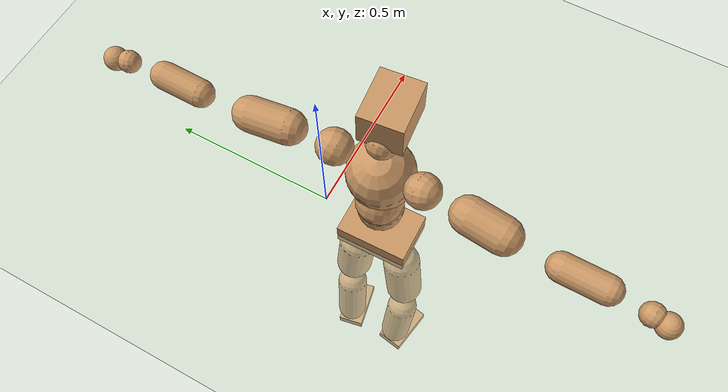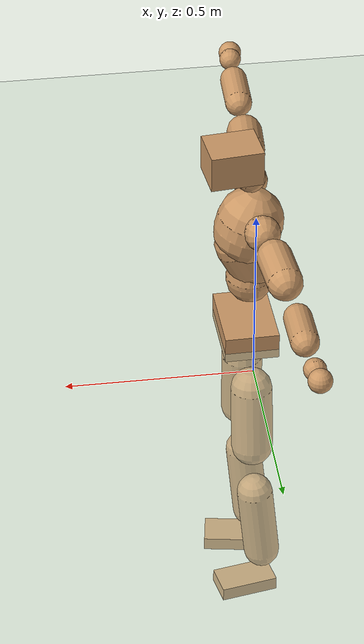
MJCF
<mujoco model="humanoid">
  <compiler coordinate="local" angle="radian"/>
  <default>
    <joint damping="0.0" armature="0.01" stiffness="0.0" limited="true"/>
    <geom conaffinity="1" condim="3" contype="7" margin="0.001" rgba="0.8 0.6 .4 1"/>
  </default>
  <asset>
    <texture type="skybox" builtin="gradient" rgb1=".4 .5 .6" rgb2="0 0 0" width="100" height="100"/>
    <texture builtin="flat" height="1278" mark="cross" markrgb="1 1 1" name="texgeom" random="0.01" rgb1="0.8 0.6 0.4" rgb2="0.8 0.6 0.4" type="cube" width="127"/>
    <texture builtin="checker" height="100" name="texplane" rgb1="0 0 0" rgb2="0.8 0.8 0.8" type="2d" width="100"/>
    <material name="MatPlane" reflectance="0.5" shininess="1" specular="1" texrepeat="60 60" texture="texplane"/>
    <material name="geom" texture="texgeom" texuniform="true"/>
  </asset>
  <worldbody>
    <light cutoff="100" diffuse="1 1 1" dir="-0 0 -1.3" directional="true" exponent="1" pos="0 0 1.3" specular=".1 .1 .1"/>
    <geom conaffinity="1" condim="3" name="floor" pos="0 0 0" rgba="0.8 0.9 0.8 1" size="100 100 .2" type="plane" material="MatPlane"/>
    <body name="Pelvis" pos="-0.0024 -0.188 0.0202">
      <freejoint name="Pelvis"/>
      <geom type="box" contype="1" conaffinity="1" density="5359.375498" pos="-0.0059 -0.0001 -0.0119" size="0.0731 0.104 0.0365" quat="0.9999 0.0000 0.0000 0.0112" name="Pelvis"/>
      <body name="L_Hip" pos="-0.0118 0.0664 -0.0836">
        <joint name="L_Hip_x" type="hinge" pos="0 0 0" axis="1 0 0" stiffness="1600" damping="160" armature="0.02" range="-180.0000 180.0000"/>
        <joint name="L_Hip_y" type="hinge" pos="0 0 0" axis="0 1 0" stiffness="1600" damping="160" armature="0.02" range="-180.0000 180.0000"/>
        <joint name="L_Hip_z" type="hinge" pos="0 0 0" axis="0 0 1" stiffness="1600" damping="160" armature="0.02" range="-180.0000 180.0000"/>
        <geom type="capsule" contype="1" conaffinity="1" density="2040.816327" size="0.0569" fromto="-0.0009 0.0076 -0.0866 -0.0029 0.0240 -0.2743" name="L_Hip"/>
        <body name="L_Knee" pos="-0.0038 0.0316 -0.3608">
          <joint name="L_Knee_x" type="hinge" pos="0 0 0" axis="1 0 0" stiffness="1600" damping="160" armature="0.02" range="-180.0000 180.0000"/>
          <joint name="L_Knee_y" type="hinge" pos="0 0 0" axis="0 1 0" stiffness="1600" damping="160" armature="0.02" range="-180.0000 180.0000"/>
          <joint name="L_Knee_z" type="hinge" pos="0 0 0" axis="0 0 1" stiffness="1600" damping="160" armature="0.02" range="-180.0000 180.0000"/>
          <geom type="capsule" contype="1" conaffinity="1" density="1234.567901" size="0.0493" fromto="-0.0085 -0.0024 -0.0788 -0.0324 -0.0094 -0.3020" name="L_Knee"/>
          <body name="L_Ankle" pos="-0.0409 -0.0118 -0.3808">
            <joint name="L_Ankle_x" type="hinge" pos="0 0 0" axis="1 0 0" stiffness="1600" damping="160" armature="0.02" range="-180.0000 180.0000"/>
            <joint name="L_Ankle_y" type="hinge" pos="0 0 0" axis="0 1 0" stiffness="1600" damping="160" armature="0.02" range="-180.0000 180.0000"/>
            <joint name="L_Ankle_z" type="hinge" pos="0 0 0" axis="0 0 1" stiffness="1600" damping="160" armature="0.02" range="-180.0000 180.0000"/>
            <geom type="box" contype="1" conaffinity="1" density="1000.000028" pos="0.0556 0.0105 -0.0269" size="0.0793 0.0437 0.0194" quat="0.9956 0.0000 0.0000 0.0933" name="L_Ankle"/>
            <body name="L_Toe" pos="0.1112 0.021 -0.0537">
              <joint name="L_Toe_x" type="hinge" pos="0 0 0" axis="1 0 0" stiffness="1000" damping="100" armature="0.02" range="-180.0000 180.0000"/>
              <joint name="L_Toe_y" type="hinge" pos="0 0 0" axis="0 1 0" stiffness="1000" damping="100" armature="0.02" range="-180.0000 180.0000"/>
              <joint name="L_Toe_z" type="hinge" pos="0 0 0" axis="0 0 1" stiffness="1000" damping="100" armature="0.02" range="-180.0000 180.0000"/>
              <geom type="box" contype="1" conaffinity="1" density="8325287.69607" pos="0.0000 0.0000 0.0265" size="0.0009 0.0022 0.001" quat="0.9950 0.0000 0.0000 0.1001" name="L_Toe"/>
            </body>
          </body>
        </body>
      </body>
      <body name="R_Hip" pos="-0.0078 -0.0651 -0.0829">
        <joint name="R_Hip_x" type="hinge" pos="0 0 0" axis="1 0 0" stiffness="1600" damping="160" armature="0.02" range="-180.0000 180.0000"/>
        <joint name="R_Hip_y" type="hinge" pos="0 0 0" axis="0 1 0" stiffness="1600" damping="160" armature="0.02" range="-180.0000 180.0000"/>
        <joint name="R_Hip_z" type="hinge" pos="0 0 0" axis="0 0 1" stiffness="1600" damping="160" armature="0.02" range="-180.0000 180.0000"/>
        <geom type="capsule" contype="1" conaffinity="1" density="2040.816327" size="0.0562" fromto="-0.0015 -0.0088 -0.0858 -0.0049 -0.0287 -0.2807" name="R_Hip"/>
        <body name="R_Knee" pos="-0.0064 -0.0374 -0.3665">
          <joint name="R_Knee_x" type="hinge" pos="0 0 0" axis="1 0 0" stiffness="1600" damping="160" armature="0.02" range="-180.0000 180.0000"/>
          <joint name="R_Knee_y" type="hinge" pos="0 0 0" axis="0 1 0" stiffness="1600" damping="160" armature="0.02" range="-180.0000 180.0000"/>
          <joint name="R_Knee_z" type="hinge" pos="0 0 0" axis="0 0 1" stiffness="1600" damping="160" armature="0.02" range="-180.0000 180.0000"/>
          <geom type="capsule" contype="1" conaffinity="1" density="1234.567901" size="0.0496" fromto="-0.0079 0.0030 -0.0792 -0.0301 0.0115 -0.3010" name="R_Knee"/>
          <body name="R_Ankle" pos="-0.0381 0.0145 -0.3801">
            <joint name="R_Ankle_x" type="hinge" pos="0 0 0" axis="1 0 0" stiffness="1600" damping="160" armature="0.02" range="-180.0000 180.0000"/>
            <joint name="R_Ankle_y" type="hinge" pos="0 0 0" axis="0 1 0" stiffness="1600" damping="160" armature="0.02" range="-180.0000 180.0000"/>
            <joint name="R_Ankle_z" type="hinge" pos="0 0 0" axis="0 0 1" stiffness="1600" damping="160" armature="0.02" range="-180.0000 180.0000"/>
            <geom type="box" contype="1" conaffinity="1" density="999.99999" pos="0.0574 -0.0096 -0.0230" size="0.0807 0.0448 0.0192" quat="0.9966 0.0000 0.0000 -0.0826" name="R_Ankle"/>
            <body name="R_Toe" pos="0.1147 -0.0192 -0.046">
              <joint name="R_Toe_x" type="hinge" pos="0 0 0" axis="1 0 0" stiffness="1000" damping="100" armature="0.02" range="-180.0000 180.0000"/>
              <joint name="R_Toe_y" type="hinge" pos="0 0 0" axis="0 1 0" stiffness="1000" damping="100" armature="0.02" range="-180.0000 180.0000"/>
              <joint name="R_Toe_z" type="hinge" pos="0 0 0" axis="0 0 1" stiffness="1000" damping="100" armature="0.02" range="-180.0000 180.0000"/>
              <geom type="box" contype="1" conaffinity="1" density="8256833.359771" pos="0.0000 0.0000 0.0248" size="0.0009 0.0022 0.001" quat="0.9973 0.0000 0.0000 -0.0729" name="R_Toe"/>
            </body>
          </body>
        </body>
      </body>
      <body name="Torso" pos="-0.0155 -0.0021 0.0952">
        <joint name="Torso_x" type="hinge" pos="0 0 0" axis="1 0 0" stiffness="2000" damping="200" armature="0.02" range="-180.0000 180.0000"/>
        <joint name="Torso_y" type="hinge" pos="0 0 0" axis="0 1 0" stiffness="2000" damping="200" armature="0.02" range="-180.0000 180.0000"/>
        <joint name="Torso_z" type="hinge" pos="0 0 0" axis="0 0 1" stiffness="2000" damping="200" armature="0.02" range="-180.0000 180.0000"/>
        <geom type="capsule" contype="1" conaffinity="1" density="2040.816327" size="0.0642" fromto="0.0012 0.0019 0.0642 0.0010 0.0015 0.0510" name="Torso"/>
        <body name="Spine" pos="0.0022 0.0034 0.1152">
          <joint name="Spine_x" type="hinge" pos="0 0 0" axis="1 0 0" stiffness="2000" damping="200" armature="0.02" range="-180.0000 180.0000"/>
          <joint name="Spine_y" type="hinge" pos="0 0 0" axis="0 1 0" stiffness="2000" damping="200" armature="0.02" range="-180.0000 180.0000"/>
          <joint name="Spine_z" type="hinge" pos="0 0 0" axis="0 0 1" stiffness="2000" damping="200" armature="0.02" range="-180.0000 180.0000"/>
          <geom type="capsule" contype="1" conaffinity="1" density="2040.816327" size="0.066" fromto="0.0303 0.0037 0.0585 -0.0071 -0.0009 -0.0138" name="Spine"/>
          <body name="Chest" pos="0.0232 0.0028 0.0448">
            <joint name="Chest_x" type="hinge" pos="0 0 0" axis="1 0 0" stiffness="2000" damping="200" armature="0.02" range="-180.0000 180.0000"/>
            <joint name="Chest_y" type="hinge" pos="0 0 0" axis="0 1 0" stiffness="2000" damping="200" armature="0.02" range="-180.0000 180.0000"/>
            <joint name="Chest_z" type="hinge" pos="0 0 0" axis="0 0 1" stiffness="2000" damping="200" armature="0.02" range="-180.0000 180.0000"/>
            <geom type="capsule" contype="1" conaffinity="1" density="2040.816327" size="0.0893" fromto="-0.0232 -0.0011 0.0862 -0.0137 -0.0006 0.0510" name="Chest"/>
            <body name="Neck" pos="-0.0439 -0.0032 0.1929">
              <joint name="Neck_x" type="hinge" pos="0 0 0" axis="1 0 0" stiffness="1000" damping="100" armature="0.02" range="-180.0000 180.0000"/>
              <joint name="Neck_y" type="hinge" pos="0 0 0" axis="0 1 0" stiffness="1000" damping="100" armature="0.02" range="-180.0000 180.0000"/>
              <joint name="Neck_z" type="hinge" pos="0 0 0" axis="0 0 1" stiffness="1000" damping="100" armature="0.02" range="-180.0000 180.0000"/>
              <geom type="capsule" contype="1" conaffinity="1" density="1000" size="0.0397" fromto="0.0246 0.0016 0.0311 0.0221 0.0015 0.0278" name="Neck"/>
              <body name="Head" pos="0.0467 0.0031 0.0589">
                <joint name="Head_x" type="hinge" pos="0 0 0" axis="1 0 0" stiffness="1000" damping="100" armature="0.02" range="-180.0000 180.0000"/>
                <joint name="Head_y" type="hinge" pos="0 0 0" axis="0 1 0" stiffness="1000" damping="100" armature="0.02" range="-180.0000 180.0000"/>
                <joint name="Head_z" type="hinge" pos="0 0 0" axis="0 0 1" stiffness="1000" damping="100" armature="0.02" range="-180.0000 180.0000"/>
                <geom type="box" contype="1" conaffinity="1" density="2249.999851" pos="0.0244 0.0026 0.0304" size="0.0704 0.0567 0.0492" quat="0.9986 0.0000 0.0000 0.0524" name="Head"/>
              </body>
            </body>
            <body name="L_Thorax" pos="-0.0319 0.0758 0.1103">
              <joint name="L_Thorax_x" type="hinge" pos="0 0 0" axis="1 0 0" stiffness="1000" damping="100" armature="0.02" range="-180.0000 180.0000"/>
              <joint name="L_Thorax_y" type="hinge" pos="0 0 0" axis="0 1 0" stiffness="1000" damping="100" armature="0.02" range="-180.0000 180.0000"/>
              <joint name="L_Thorax_z" type="hinge" pos="0 0 0" axis="0 0 1" stiffness="1000" damping="100" armature="0.02" range="-180.0000 180.0000"/>
              <geom type="capsule" contype="1" conaffinity="1" density="1000" size="0.0478" fromto="-0.0038 0.0431 0.0160 -0.0040 0.0450 0.0167" name="L_Thorax"/>
              <body name="L_Shoulder" pos="-0.0079 0.0881 0.0326">
                <joint name="L_Shoulder_x" type="hinge" pos="0 0 0" axis="1 0 0" stiffness="1000" damping="100" armature="0.02" range="-720.0000 720.0000"/>
                <joint name="L_Shoulder_y" type="hinge" pos="0 0 0" axis="0 1 0" stiffness="1000" damping="100" armature="0.02" range="-720.0000 720.0000"/>
                <joint name="L_Shoulder_z" type="hinge" pos="0 0 0" axis="0 0 1" stiffness="1000" damping="100" armature="0.02" range="-720.0000 720.0000"/>
                <geom type="capsule" contype="1" conaffinity="1" density="1000" size="0.0465" fromto="-0.0077 0.0760 -0.0040 -0.0183 0.1813 -0.0096" name="L_Shoulder"/>
                <body name="L_Elbow" pos="-0.026 0.2573 -0.0137">
                  <joint name="L_Elbow_x" type="hinge" pos="0 0 0" axis="1 0 0" stiffness="1000" damping="100" armature="0.02" range="-720.0000 720.0000"/>
                  <joint name="L_Elbow_y" type="hinge" pos="0 0 0" axis="0 1 0" stiffness="1000" damping="100" armature="0.02" range="-720.0000 720.0000"/>
                  <joint name="L_Elbow_z" type="hinge" pos="0 0 0" axis="0 0 1" stiffness="1000" damping="100" armature="0.02" range="-720.0000 720.0000"/>
                  <geom type="capsule" contype="1" conaffinity="1" density="1000" size="0.0365" fromto="-0.0003 0.0665 0.0026 -0.0009 0.1734 0.0067" name="L_Elbow"/>
                  <body name="L_Wrist" pos="-0.0012 0.2399 0.0093">
                    <joint name="L_Wrist_x" type="hinge" pos="0 0 0" axis="1 0 0" stiffness="600" damping="60" armature="0.02" range="-180.0000 180.0000"/>
                    <joint name="L_Wrist_y" type="hinge" pos="0 0 0" axis="0 1 0" stiffness="600" damping="60" armature="0.02" range="-180.0000 180.0000"/>
                    <joint name="L_Wrist_z" type="hinge" pos="0 0 0" axis="0 0 1" stiffness="600" damping="60" armature="0.02" range="-180.0000 180.0000"/>
                    <geom type="capsule" contype="1" conaffinity="1" density="1000" size="0.0291" fromto="-0.0063 0.0379 -0.0047 -0.0066 0.0399 -0.0049" name="L_Wrist"/>
                    <body name="L_Hand" pos="-0.0129 0.0778 -0.0096">
                      <joint name="L_Hand_x" type="hinge" pos="0 0 0" axis="1 0 0" stiffness="600" damping="60" armature="0.02" range="-180.0000 180.0000"/>
                      <joint name="L_Hand_y" type="hinge" pos="0 0 0" axis="0 1 0" stiffness="600" damping="60" armature="0.02" range="-180.0000 180.0000"/>
                      <joint name="L_Hand_z" type="hinge" pos="0 0 0" axis="0 0 1" stiffness="600" damping="60" armature="0.02" range="-180.0000 180.0000"/>
                      <geom type="sphere" contype="1" conaffinity="1" density="1000" size="0.0312" pos="0.0000 0.0000 0.0000" name="L_Hand"/>
                    </body>
                  </body>
                </body>
              </body>
            </body>
            <body name="R_Thorax" pos="-0.035 -0.0777 0.1083">
              <joint name="R_Thorax_x" type="hinge" pos="0 0 0" axis="1 0 0" stiffness="1000" damping="100" armature="0.02" range="-180.0000 180.0000"/>
              <joint name="R_Thorax_y" type="hinge" pos="0 0 0" axis="0 1 0" stiffness="1000" damping="100" armature="0.02" range="-180.0000 180.0000"/>
              <joint name="R_Thorax_z" type="hinge" pos="0 0 0" axis="0 0 1" stiffness="1000" damping="100" armature="0.02" range="-180.0000 180.0000"/>
              <geom type="capsule" contype="1" conaffinity="1" density="1000" size="0.0465" fromto="-0.0053 -0.0442 0.0166 -0.0055 -0.0461 0.0173" name="R_Thorax"/>
              <body name="R_Shoulder" pos="-0.0108 -0.0903 0.0339">
                <joint name="R_Shoulder_x" type="hinge" pos="0 0 0" axis="1 0 0" stiffness="1000" damping="100" armature="0.02" range="-720.0000 720.0000"/>
                <joint name="R_Shoulder_y" type="hinge" pos="0 0 0" axis="0 1 0" stiffness="1000" damping="100" armature="0.02" range="-720.0000 720.0000"/>
                <joint name="R_Shoulder_z" type="hinge" pos="0 0 0" axis="0 0 1" stiffness="1000" damping="100" armature="0.02" range="-720.0000 720.0000"/>
                <geom type="capsule" contype="1" conaffinity="1" density="1000" size="0.0481" fromto="-0.0053 -0.0778 -0.0044 -0.0117 -0.1700 -0.0095" name="R_Shoulder"/>
                <body name="R_Elbow" pos="-0.017 -0.2478 -0.0139">
                  <joint name="R_Elbow_x" type="hinge" pos="0 0 0" axis="1 0 0" stiffness="1000" damping="100" armature="0.02" range="-720.0000 720.0000"/>
                  <joint name="R_Elbow_y" type="hinge" pos="0 0 0" axis="0 1 0" stiffness="1000" damping="100" armature="0.02" range="-720.0000 720.0000"/>
                  <joint name="R_Elbow_z" type="hinge" pos="0 0 0" axis="0 0 1" stiffness="1000" damping="100" armature="0.02" range="-720.0000 720.0000"/>
                  <geom type="capsule" contype="1" conaffinity="1" density="1000" size="0.0367" fromto="-0.0013 -0.0666 0.0021 -0.0034 -0.1788 0.0057" name="R_Elbow"/>
                  <body name="R_Wrist" pos="-0.0047 -0.2454 0.0078">
                    <joint name="R_Wrist_x" type="hinge" pos="0 0 0" axis="1 0 0" stiffness="600" damping="60" armature="0.02" range="-180.0000 180.0000"/>
                    <joint name="R_Wrist_y" type="hinge" pos="0 0 0" axis="0 1 0" stiffness="600" damping="60" armature="0.02" range="-180.0000 180.0000"/>
                    <joint name="R_Wrist_z" type="hinge" pos="0 0 0" axis="0 0 1" stiffness="600" damping="60" armature="0.02" range="-180.0000 180.0000"/>
                    <geom type="capsule" contype="1" conaffinity="1" density="1000" size="0.0297" fromto="-0.0049 -0.0381 -0.0035 -0.0052 -0.0401 -0.0037" name="R_Wrist"/>
                    <body name="R_Hand" pos="-0.0101 -0.0783 -0.0073">
                      <joint name="R_Hand_x" type="hinge" pos="0 0 0" axis="1 0 0" stiffness="600" damping="60" armature="0.02" range="-180.0000 180.0000"/>
                      <joint name="R_Hand_y" type="hinge" pos="0 0 0" axis="0 1 0" stiffness="600" damping="60" armature="0.02" range="-180.0000 180.0000"/>
                      <joint name="R_Hand_z" type="hinge" pos="0 0 0" axis="0 0 1" stiffness="600" damping="60" armature="0.02" range="-180.0000 180.0000"/>
                      <geom type="sphere" contype="1" conaffinity="1" density="1000" size="0.0313" pos="0.0000 0.0000 0.0000" name="R_Hand"/>
                    </body>
                  </body>
                </body>
              </body>
            </body>
          </body>
        </body>
      </body>
    </body>
  </worldbody>
  <actuator>
    <motor name="L_Hip_x" joint="L_Hip_x" gear="500"/>
    <motor name="L_Hip_y" joint="L_Hip_y" gear="500"/>
    <motor name="L_Hip_z" joint="L_Hip_z" gear="500"/>
    <motor name="L_Knee_x" joint="L_Knee_x" gear="500"/>
    <motor name="L_Knee_y" joint="L_Knee_y" gear="500"/>
    <motor name="L_Knee_z" joint="L_Knee_z" gear="500"/>
    <motor name="L_Ankle_x" joint="L_Ankle_x" gear="500"/>
    <motor name="L_Ankle_y" joint="L_Ankle_y" gear="500"/>
    <motor name="L_Ankle_z" joint="L_Ankle_z" gear="500"/>
    <motor name="L_Toe_x" joint="L_Toe_x" gear="500"/>
    <motor name="L_Toe_y" joint="L_Toe_y" gear="500"/>
    <motor name="L_Toe_z" joint="L_Toe_z" gear="500"/>
    <motor name="R_Hip_x" joint="R_Hip_x" gear="500"/>
    <motor name="R_Hip_y" joint="R_Hip_y" gear="500"/>
    <motor name="R_Hip_z" joint="R_Hip_z" gear="500"/>
    <motor name="R_Knee_x" joint="R_Knee_x" gear="500"/>
    <motor name="R_Knee_y" joint="R_Knee_y" gear="500"/>
    <motor name="R_Knee_z" joint="R_Knee_z" gear="500"/>
    <motor name="R_Ankle_x" joint="R_Ankle_x" gear="500"/>
    <motor name="R_Ankle_y" joint="R_Ankle_y" gear="500"/>
    <motor name="R_Ankle_z" joint="R_Ankle_z" gear="500"/>
    <motor name="R_Toe_x" joint="R_Toe_x" gear="500"/>
    <motor name="R_Toe_y" joint="R_Toe_y" gear="500"/>
    <motor name="R_Toe_z" joint="R_Toe_z" gear="500"/>
    <motor name="Torso_x" joint="Torso_x" gear="500"/>
    <motor name="Torso_y" joint="Torso_y" gear="500"/>
    <motor name="Torso_z" joint="Torso_z" gear="500"/>
    <motor name="Spine_x" joint="Spine_x" gear="500"/>
    <motor name="Spine_y" joint="Spine_y" gear="500"/>
    <motor name="Spine_z" joint="Spine_z" gear="500"/>
    <motor name="Chest_x" joint="Chest_x" gear="500"/>
    <motor name="Chest_y" joint="Chest_y" gear="500"/>
    <motor name="Chest_z" joint="Chest_z" gear="500"/>
    <motor name="Neck_x" joint="Neck_x" gear="500"/>
    <motor name="Neck_y" joint="Neck_y" gear="500"/>
    <motor name="Neck_z" joint="Neck_z" gear="500"/>
    <motor name="Head_x" joint="Head_x" gear="500"/>
    <motor name="Head_y" joint="Head_y" gear="500"/>
    <motor name="Head_z" joint="Head_z" gear="500"/>
    <motor name="L_Thorax_x" joint="L_Thorax_x" gear="500"/>
    <motor name="L_Thorax_y" joint="L_Thorax_y" gear="500"/>
    <motor name="L_Thorax_z" joint="L_Thorax_z" gear="500"/>
    <motor name="L_Shoulder_x" joint="L_Shoulder_x" gear="500"/>
    <motor name="L_Shoulder_y" joint="L_Shoulder_y" gear="500"/>
    <motor name="L_Shoulder_z" joint="L_Shoulder_z" gear="500"/>
    <motor name="L_Elbow_x" joint="L_Elbow_x" gear="500"/>
    <motor name="L_Elbow_y" joint="L_Elbow_y" gear="500"/>
    <motor name="L_Elbow_z" joint="L_Elbow_z" gear="500"/>
    <motor name="L_Wrist_x" joint="L_Wrist_x" gear="500"/>
    <motor name="L_Wrist_y" joint="L_Wrist_y" gear="500"/>
    <motor name="L_Wrist_z" joint="L_Wrist_z" gear="500"/>
    <motor name="L_Hand_x" joint="L_Hand_x" gear="500"/>
    <motor name="L_Hand_y" joint="L_Hand_y" gear="500"/>
    <motor name="L_Hand_z" joint="L_Hand_z" gear="500"/>
    <motor name="R_Thorax_x" joint="R_Thorax_x" gear="500"/>
    <motor name="R_Thorax_y" joint="R_Thorax_y" gear="500"/>
    <motor name="R_Thorax_z" joint="R_Thorax_z" gear="500"/>
    <motor name="R_Shoulder_x" joint="R_Shoulder_x" gear="500"/>
    <motor name="R_Shoulder_y" joint="R_Shoulder_y" gear="500"/>
    <motor name="R_Shoulder_z" joint="R_Shoulder_z" gear="500"/>
    <motor name="R_Elbow_x" joint="R_Elbow_x" gear="500"/>
    <motor name="R_Elbow_y" joint="R_Elbow_y" gear="500"/>
    <motor name="R_Elbow_z" joint="R_Elbow_z" gear="500"/>
    <motor name="R_Wrist_x" joint="R_Wrist_x" gear="500"/>
    <motor name="R_Wrist_y" joint="R_Wrist_y" gear="500"/>
    <motor name="R_Wrist_z" joint="R_Wrist_z" gear="500"/>
    <motor name="R_Hand_x" joint="R_Hand_x" gear="500"/>
    <motor name="R_Hand_y" joint="R_Hand_y" gear="500"/>
    <motor name="R_Hand_z" joint="R_Hand_z" gear="500"/>
  </actuator>
  <contact>
    <exclude body1="Torso" body2="Chest"/>
    <exclude body1="Head" body2="Chest"/>
    <exclude body1="R_Knee" body2="R_Toe"/>
    <exclude body1="R_Knee" body2="L_Ankle"/>
    <exclude body1="R_Knee" body2="L_Toe"/>
    <exclude body1="L_Knee" body2="L_Toe"/>
    <exclude body1="L_Knee" body2="R_Ankle"/>
    <exclude body1="L_Knee" body2="R_Toe"/>
    <exclude body1="L_Shoulder" body2="Chest"/>
    <exclude body1="R_Shoulder" body2="Chest"/>
  </contact>
  <sensor/>
  <size njmax="700" nconmax="700"/>
</mujoco>
